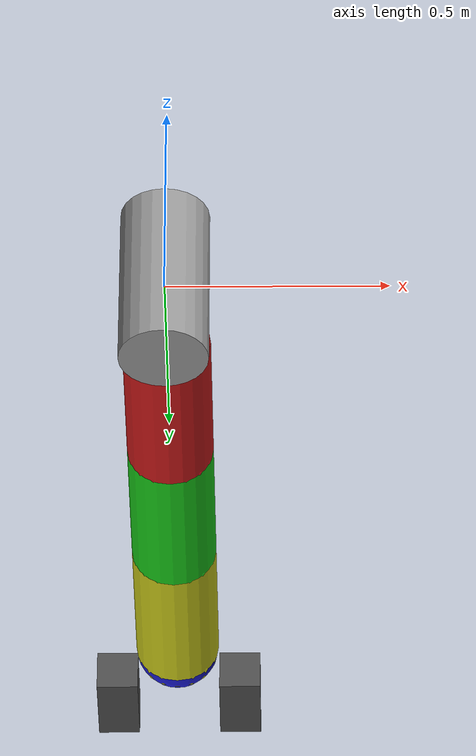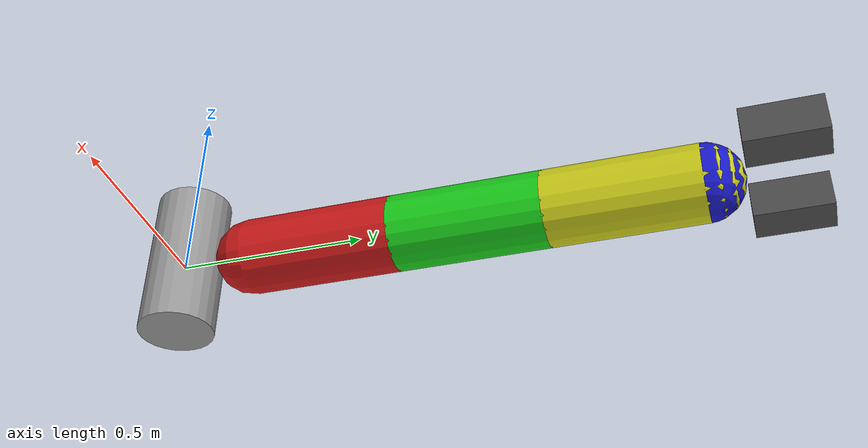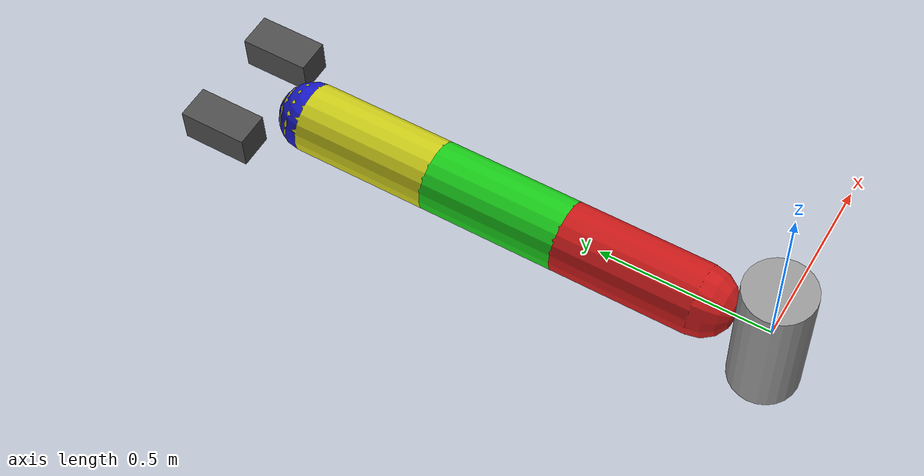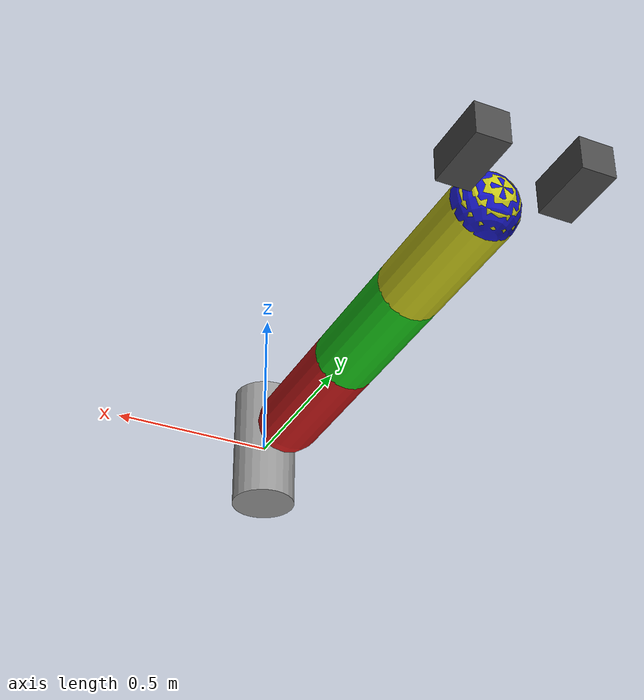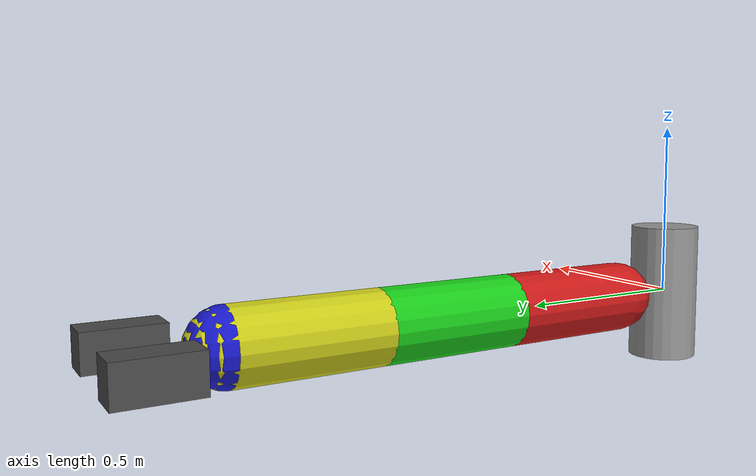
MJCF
<mujoco model="4_dof_arm_gripper">
    <option timestep="0.002" />
    <worldbody>
        <!-- Base -->
        <body name="base" pos="0 0 0">
            <joint name="joint1" type="hinge" axis="0 0 1" limited="true" range="-180 180"/>
            <geom type="cylinder" size="0.1 0.2" rgba="0.6 0.6 0.6 1"/>

            <!-- First segment -->
            <body name="segment1" pos="0 0.2 0">
                <geom type="capsule" fromto="0 0 0 0 0.4 0" size="0.1" rgba="0.8 0.1 0.1 1"/>
                <joint name="joint2" type="hinge" axis="0 1 0" pos="0 0.4 0" limited="true" range="-90 90"/>

                <!-- Second segment -->
                <body name="segment2" pos="0 0.4 0">
                    <geom type="capsule" fromto="0 0 0 0 0.4 0" size="0.1" rgba="0.1 0.8 0.1 1"/>
                    <joint name="joint3" type="hinge" axis="0 0 1" pos="0 0.4 0" limited="true" range="-180 180"/>

                    <!-- Third segment -->
                    <body name="segment3" pos="0 0.4 0">
                        <geom type="capsule" fromto="0 0 0 0 0.4 0" size="0.1" rgba="0.8 0.8 0.1 1"/>
                        <joint name="joint4" type="hinge" axis="0 1 0" pos="0 0.4 0" limited="true" range="-90 90"/>

                        <!-- End effector -->
                        <body name="end_effector" pos="0 0.4 0">
                            <geom type="sphere" size="0.1" rgba="0.1 0.1 0.8 1"/>

                            <!-- Gripper base -->
                            <body name="gripper_base" pos="0 0.1 0">
                                <!-- Left finger -->
                                <body name="left_finger" pos="-0.15 0.1 0">
                                    <geom type="box" size="0.05 0.1 0.05" rgba="0.3 0.3 0.3 1"/>
                                    <joint name="left_finger_joint" type="slide" axis="1 0 0" limited="true" range="0 0.15"/>
                                </body>
                                <!-- Right finger -->
                                <body name="right_finger" pos="0.15 0.1 0">
                                    <geom type="box" size="0.05 0.1 0.05" rgba="0.3 0.3 0.3 1"/>
                                    <joint name="right_finger_joint" type="slide" axis="-1 0 0" limited="true" range="0 0.15"/>
                                </body>
                            </body>
                        </body>
                    </body>
                </body>
            </body>
        </body>
    </worldbody>
    <actuator>
        <motor name="motor1" joint="joint1" gear="100"/>
        <motor name="motor2" joint="joint2" gear="100"/>
        <motor name="motor3" joint="joint3" gear="100"/>
        <motor name="motor4" joint="joint4" gear="100"/>
        <motor name="motor5" joint="left_finger_joint" gear="100"/>
        <motor name="motor6" joint="right_finger_joint" gear="100"/>
    </actuator>
</mujoco>
